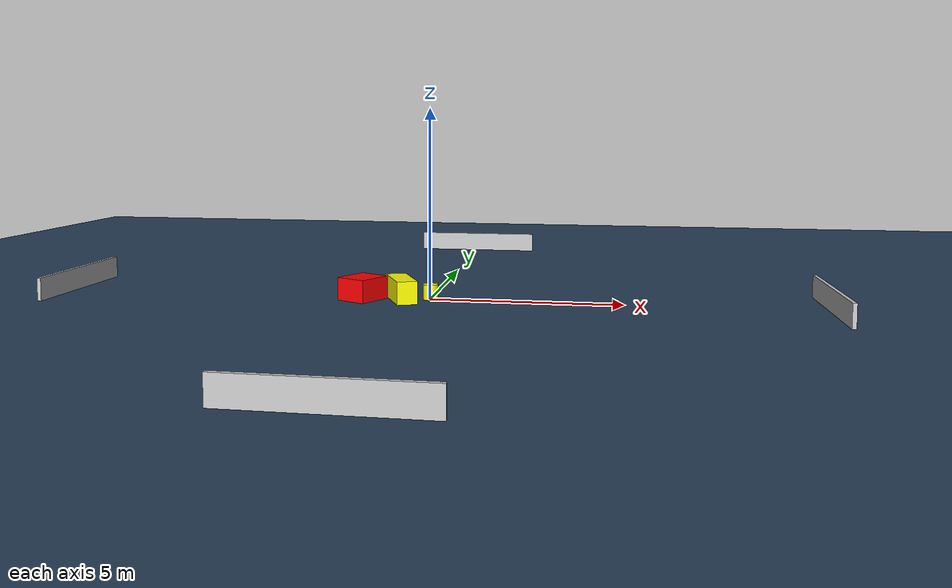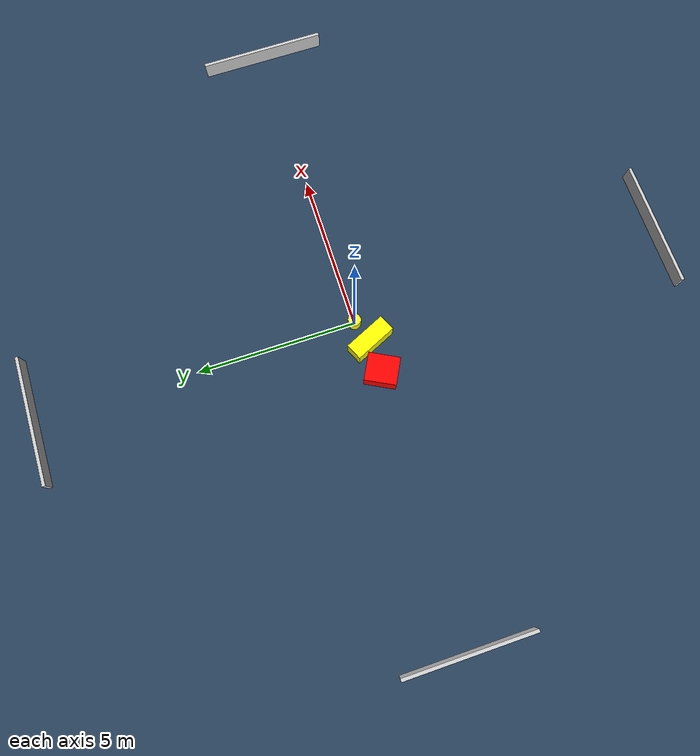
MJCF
<?xml version="1.0" ?>
<mujoco model="generated_environment">
  <option timestep="0.01" integrator="RK4" cone="elliptic"/>
  <default>
    <geom density="1"/>
  </default>
  <asset>
    <texture builtin="gradient" height="3072" name="skybox" rgb1="0.3 0.5 0.7" rgb2="0 0 0" type="skybox" width="512"/>
    <texture builtin="checker" height="300" name="groundplane" rgb1="0.2 0.3 0.4" rgb2="0.1 0.2 0.3" type="2d" width="300"/>
    <material name="groundplane" reflectance="0.2" texrepeat="5 5" texture="groundplane"/>
  </asset>
  <worldbody>
    <light dir="0 0 -1" directional="true" pos="0 0 1.5"/>
    <geom condim="3" friction="0.5 0.005 0.001" material="groundplane" name="floor" pos="0 0 0" size="0 0 0.05" type="plane"/>
    <body name="walls">
      <geom name="wall_1" condim="4" pos="-10.0 0.0 0.3" rgba="0.800000011920929 0.800000011920929 0.800000011920929 1.0" size="0.05 2.0 0.3" type="box"/>
      <geom name="wall_2" condim="4" pos="10.0 0.0 0.3" rgba="0.800000011920929 0.800000011920929 0.800000011920929 1.0" size="0.05 2.0 0.3" type="box"/>
      <geom name="wall_3" condim="4" pos="0.0 -10.0 0.3" rgba="0.800000011920929 0.800000011920929 0.800000011920929 1.0" size="2.0 0.05 0.3" type="box"/>
      <geom name="wall_4" condim="4" pos="0.0 10.0 0.3" rgba="0.800000011920929 0.800000011920929 0.800000011920929 1.0" size="2.0 0.05 0.3" type="box"/>
    </body>
    <body name="robot">
      <joint name="joint_x" type="slide" pos="0 0 0" axis="1 0 0"/>
      <joint name="joint_y" type="slide" pos="0 0 0" axis="0 1 0"/>
      <geom name="robot" type="cylinder" pos="0.0 0.0 0.2" size="0.2 0.2 0.0" mass="5.0" friction="1.0 0.005 0.0001" condim="4" rgba="1.0 1.0 0.0 1.0"/>
    </body>
    <body name="obstacle_1_movable">
      <geom name="obstacle_1_movable" condim="4" pos="-0.7284226896411079 -0.26286808324507754 0.3" euler="0 0 204.43375874297016" friction="0.0 0.005 0.001" rgba="1.0 1.0 0.0 1.0" size="0.2674192274124052 0.6861303725743628 0.3" type="box" mass="0.1"/>
      <joint type="free"/>
    </body>
    <body name="obstacle_2_static">
      <geom name="obstacle_2_static" condim="4" pos="-1.7616295187030955 -0.29327952535923163 0.3" euler="0 0 242.09383798071153" friction="0.0 0.005 0.001" rgba="1.0 0.0 0.0 1.0" size="0.4915692876057481 0.4320365415632377 0.3" type="box"/>
    </body>
  </worldbody>
  <actuator>
    <motor name="actuator_x" joint="joint_x" gear="1" ctrlrange="-1 1"/>
    <motor name="actuator_y" joint="joint_y" gear="1" ctrlrange="-1 1"/>
  </actuator>
</mujoco>
